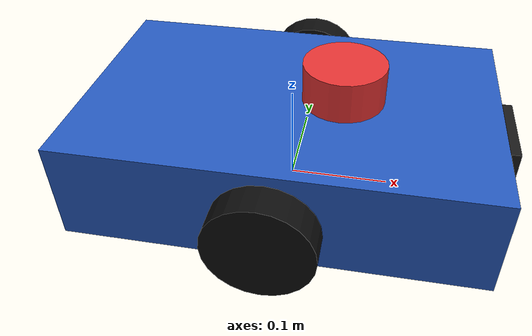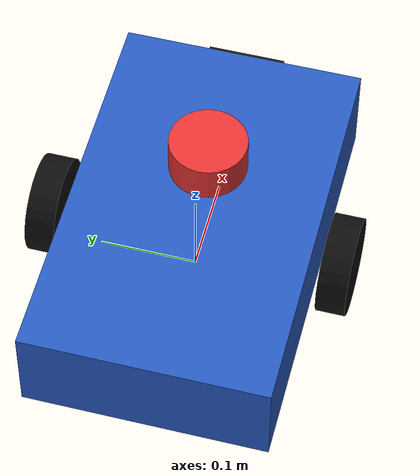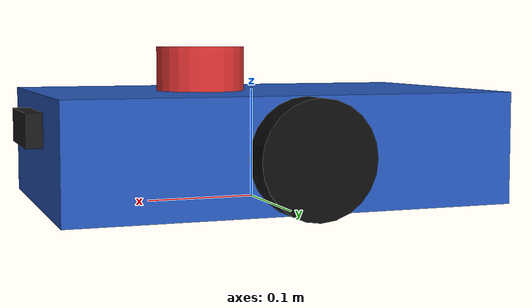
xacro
<?xml version="1.0"?>
<robot xmlns:xacro="http://www.ros.org/wiki/xacro" name="diffbot">

  <!-- ===== Parameters (edit here, not in the links) ===== -->
  <xacro:property name="base_length"   value="0.40"/>
  <xacro:property name="base_width"    value="0.25"/>
  <xacro:property name="base_height"   value="0.10"/>
  <xacro:property name="base_mass"     value="5.0"/>

  <xacro:property name="wheel_radius"  value="0.05"/>
  <xacro:property name="wheel_width"   value="0.03"/>
  <xacro:property name="wheel_mass"    value="0.5"/>
  <xacro:property name="wheel_sep"     value="0.30"/>  <!-- distance between wheel centres -->
  <xacro:property name="wheel_x"       value="0.0"/>

  <xacro:property name="caster_radius" value="0.02"/>
  <xacro:property name="caster_x"      value="0.15"/>

  <!-- ===== Inertia macros ===== -->
  <xacro:macro name="box_inertia" params="m x y z">
    <inertial>
      <mass value="${m}"/>
      <inertia ixx="${m/12*(y*y+z*z)}" ixy="0" ixz="0"
               iyy="${m/12*(x*x+z*z)}" iyz="0"
               izz="${m/12*(x*x+y*y)}"/>
    </inertial>
  </xacro:macro>

  <!-- Wheel: cylinder axis along local Y -->
  <xacro:macro name="wheel_inertia" params="m r w">
    <inertial>
      <mass value="${m}"/>
      <inertia ixx="${m*(3*r*r+w*w)/12}" ixy="0" ixz="0"
               iyy="${m*r*r/2}" iyz="0"
               izz="${m*(3*r*r+w*w)/12}"/>
    </inertial>
  </xacro:macro>

  <xacro:macro name="sphere_inertia" params="m r">
    <inertial>
      <mass value="${m}"/>
      <inertia ixx="${2*m*r*r/5}" ixy="0" ixz="0"
               iyy="${2*m*r*r/5}" iyz="0"
               izz="${2*m*r*r/5}"/>
    </inertial>
  </xacro:macro>

  <!-- ===== Links ===== -->
  <link name="base_footprint"/>

  <link name="base_link">
    <visual>
      <geometry><box size="${base_length} ${base_width} ${base_height}"/></geometry>
      <material name="body"><color rgba="0.15 0.35 0.75 1"/></material>
    </visual>
    <collision>
      <geometry><box size="${base_length} ${base_width} ${base_height}"/></geometry>
    </collision>
    <xacro:box_inertia m="${base_mass}" x="${base_length}" y="${base_width}" z="${base_height}"/>
  </link>

  <joint name="base_footprint_joint" type="fixed">
    <parent link="base_footprint"/>
    <child link="base_link"/>
    <origin xyz="0 0 ${wheel_radius}" rpy="0 0 0"/>
  </joint>

  <!-- Drive wheels -->
  <xacro:macro name="wheel" params="name y_sign">
    <link name="${name}_wheel">
      <visual>
        <origin rpy="${pi/2} 0 0"/>
        <geometry><cylinder radius="${wheel_radius}" length="${wheel_width}"/></geometry>
        <material name="tyre"><color rgba="0.05 0.05 0.05 1"/></material>
      </visual>
      <collision>
        <origin rpy="${pi/2} 0 0"/>
        <geometry><cylinder radius="${wheel_radius}" length="${wheel_width}"/></geometry>
      </collision>
      <xacro:wheel_inertia m="${wheel_mass}" r="${wheel_radius}" w="${wheel_width}"/>
    </link>
    <joint name="${name}_wheel_joint" type="continuous">
      <parent link="base_link"/>
      <child link="${name}_wheel"/>
      <origin xyz="${wheel_x} ${y_sign*wheel_sep/2} 0" rpy="0 0 0"/>
      <axis xyz="0 1 0"/>
    </joint>
    <gazebo reference="${name}_wheel">
      <mu1>1.0</mu1><mu2>1.0</mu2>
    </gazebo>
  </xacro:macro>

  <xacro:wheel name="left"  y_sign="1"/>
  <xacro:wheel name="right" y_sign="-1"/>

  <!-- Frictionless casters (front and rear) for stability -->
  <xacro:macro name="caster" params="name x_pos">
    <link name="${name}_caster">
      <visual>
        <geometry><sphere radius="${caster_radius}"/></geometry>
        <material name="caster"><color rgba="0.6 0.6 0.6 1"/></material>
      </visual>
      <collision>
        <geometry><sphere radius="${caster_radius}"/></geometry>
      </collision>
      <xacro:sphere_inertia m="0.05" r="${caster_radius}"/>
    </link>
    <joint name="${name}_caster_joint" type="fixed">
      <parent link="base_link"/>
      <child link="${name}_caster"/>
      <origin xyz="${x_pos} 0 ${-(wheel_radius - caster_radius)}"/>
    </joint>
    <gazebo reference="${name}_caster">
      <mu1>0.0</mu1><mu2>0.0</mu2>
    </gazebo>
  </xacro:macro>

  <xacro:caster name="front" x_pos="${caster_x}"/>
  <xacro:caster name="rear"  x_pos="${-caster_x}"/>

  <!-- Sensors + Gazebo plugins -->
  <xacro:include filename="sensors.xacro"/>
  <xacro:include filename="gazebo.xacro"/>

</robot>

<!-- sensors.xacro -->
<robot xmlns:xacro="http://www.ros.org/wiki/xacro">

  <!-- ===== 2D LiDAR ===== -->
  <link name="lidar_link">
    <visual>
      <geometry><cylinder radius="0.04" length="0.04"/></geometry>
      <material name="lidar"><color rgba="0.9 0.2 0.2 1"/></material>
    </visual>
    <collision>
      <geometry><cylinder radius="0.04" length="0.04"/></geometry>
    </collision>
    <inertial>
      <mass value="0.1"/>
      <inertia ixx="1e-4" ixy="0" ixz="0" iyy="1e-4" iyz="0" izz="1e-4"/>
    </inertial>
  </link>
  <joint name="lidar_joint" type="fixed">
    <parent link="base_link"/>
    <child link="lidar_link"/>
    <origin xyz="0.05 0 ${base_height/2 + 0.02}"/>
  </joint>

  <gazebo reference="lidar_link">
    <sensor name="lidar" type="gpu_lidar">
      <topic>scan</topic>
      <update_rate>10</update_rate>
      <always_on>true</always_on>
      <visualize>false</visualize>
      <gz_frame_id>lidar_link</gz_frame_id>
      <lidar>
        <scan>
          <horizontal>
            <samples>360</samples>
            <resolution>1</resolution>
            <min_angle>-3.14159</min_angle>
            <max_angle>3.14159</max_angle>
          </horizontal>
        </scan>
        <range>
          <min>0.12</min>
          <max>12.0</max>
          <resolution>0.01</resolution>
        </range>
        <noise>
          <type>gaussian</type>
          <mean>0.0</mean>
          <stddev>0.01</stddev>
        </noise>
      </lidar>
    </sensor>
  </gazebo>

  <!-- ===== RGB camera ===== -->
  <link name="camera_link">
    <visual>
      <geometry><box size="0.03 0.08 0.03"/></geometry>
      <material name="camera"><color rgba="0.1 0.1 0.1 1"/></material>
    </visual>
    <collision>
      <geometry><box size="0.03 0.08 0.03"/></geometry>
    </collision>
    <inertial>
      <mass value="0.05"/>
      <inertia ixx="1e-5" ixy="0" ixz="0" iyy="1e-5" iyz="0" izz="1e-5"/>
    </inertial>
  </link>
  <joint name="camera_joint" type="fixed">
    <parent link="base_link"/>
    <child link="camera_link"/>
    <origin xyz="${base_length/2} 0 0.02"/>
  </joint>

  <gazebo reference="camera_link">
    <sensor name="camera" type="camera">
      <topic>camera/image_raw</topic>
      <update_rate>30</update_rate>
      <always_on>true</always_on>
      <gz_frame_id>camera_link</gz_frame_id>
      <camera>
        <horizontal_fov>1.047</horizontal_fov>
        <image>
          <width>640</width>
          <height>480</height>
          <format>R8G8B8</format>
        </image>
        <clip><near>0.05</near><far>20</far></clip>
      </camera>
    </sensor>
  </gazebo>

</robot>
